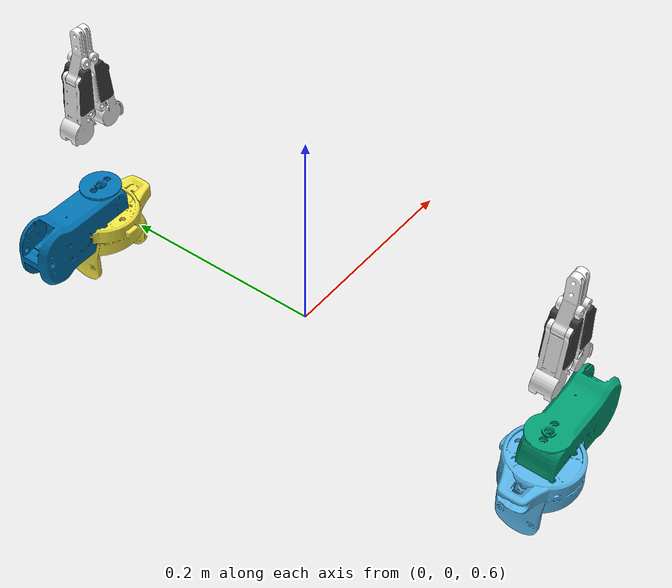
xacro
<?xml version="1.0"?>
<robot name="dual_rg2_arm_fixture" xmlns:xacro="http://www.ros.org/wiki/xacro">
  <xacro:arg name="use_standard_fingertips" default="false"/>
  <xacro:include filename="$(find onrobot_rg2)/urdf/onrobot_rg2_macro.xacro"/>

  <link name="arm_base"/>
  <link name="left_tool0"/>
  <joint name="left_wrist_joint" type="fixed">
    <parent link="arm_base"/><child link="left_tool0"/>
    <origin xyz="0 0.25 0.5" rpy="0 0 0"/>
  </joint>
  <link name="right_tool0"/>
  <joint name="right_wrist_joint" type="fixed">
    <parent link="arm_base"/><child link="right_tool0"/>
    <origin xyz="0 -0.25 0.5" rpy="0 0 0"/>
  </joint>

  <xacro:onrobot_rg2 parent="left_tool0" prefix="left_gripper_"
                       origin_xyz="0 0 0.08" origin_rpy="0 0 0"/>
  <xacro:onrobot_rg2 parent="right_tool0" prefix="right_gripper_"
                       origin_xyz="0 0 0.08" origin_rpy="0 0 3.14159265359"/>

  <link name="left_user_finger"/>
  <joint name="left_user_finger_joint" type="fixed">
    <parent link="left_gripper_left_finger_mount"/>
    <child link="left_user_finger"/>
  </joint>
  <link name="right_user_finger"/>
  <joint name="right_user_finger_joint" type="fixed">
    <parent link="right_gripper_right_finger_mount"/>
    <child link="right_user_finger"/>
  </joint>
</robot>

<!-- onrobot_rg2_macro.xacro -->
<robot xmlns:xacro="http://www.ros.org/wiki/xacro">

    <!-- ================= Xacro arguments ================= -->

      <xacro:arg name="mesh_path" default="package://onrobot_rg2/meshes"/>
      <xacro:arg name="fingertip_material" default="standard"/>
      <xacro:arg name="use_standard_fingertips" default="true"/>

      <!-- outwards or inwards -->
      <xacro:arg name="fingertip_orientation" default="inwards"/>

  <xacro:macro name="onrobot_rg2"
               params="parent:='' prefix:='' origin_xyz:='0 0 0' origin_rpy:='0 0 0'">
    <xacro:if value="${parent != ''}">
      <joint name="${prefix}mount_joint" type="fixed">
        <parent link="${parent}"/>
        <child link="${prefix}base_link"/>
        <origin xyz="${origin_xyz}" rpy="${origin_rpy}"/>
      </joint>
    </xacro:if>
      <!-- ================= Fingertip orientation ================= -->

      <xacro:if value="${'$(arg fingertip_orientation)' == 'inwards'}">
        <xacro:property name="fingertip_joint_rpy" value="${pi / 2} 0 0"/>
        <xacro:property name="fingertip_vis_xyz" value="0 0 0"/>
        <xacro:property name="fingertip_collision_z_offset" value="0"/>
      </xacro:if>

      <!-- Rotate the fingertips 180 degrees relative to inwards. -->
      <xacro:unless value="${'$(arg fingertip_orientation)' == 'inwards'}">
        <xacro:property name="fingertip_joint_rpy" value="${-pi / 2} 0 0"/>
        <xacro:property name="fingertip_vis_xyz" value="0 0 0.007"/>
        <xacro:property name="fingertip_collision_z_offset" value="0.007"/>
      </xacro:unless>

      <!-- ================= Fingertip material ================= -->

      <xacro:if value="${'$(arg fingertip_material)' == 'standard'}">
        <xacro:property
          name="fingertip_mesh"
          value="$(arg mesh_path)/fingertip_standard"/>
      </xacro:if>

      <xacro:if value="${'$(arg fingertip_material)' == 'x'}">
        <xacro:property
          name="fingertip_mesh"
          value="$(arg mesh_path)/fingertip_x"/>
      </xacro:if>

      <xacro:if value="${'$(arg fingertip_material)' == '50_standard'}">
        <xacro:property
          name="fingertip_mesh"
          value="$(arg mesh_path)/fingertip_50_standard"/>
      </xacro:if>

      <xacro:if value="${'$(arg fingertip_material)' == '50_x'}">
        <xacro:property
          name="fingertip_mesh"
          value="$(arg mesh_path)/fingertip_50_x"/>
      </xacro:if>

      <xacro:if value="${'$(arg fingertip_material)' == '100_standard'}">
        <xacro:property
          name="fingertip_mesh"
          value="$(arg mesh_path)/fingertip_100_standard"/>
      </xacro:if>

      <xacro:if value="${'$(arg fingertip_material)' == '100_x'}">
        <xacro:property
          name="fingertip_mesh"
          value="$(arg mesh_path)/fingertip_100_x"/>
      </xacro:if>

      <!-- ================= Fingertip collision values ================= -->

      <xacro:if value="${'$(arg fingertip_material)' == 'standard'}">
        <xacro:property name="fingertip_collision_1_x" value="0.0014"/>
        <xacro:property name="fingertip_collision_1_y" value="0.00"/>
        <xacro:property name="fingertip_collision_1_z" value="-0.00127"/>
        <xacro:property name="fingertip_collision_1_size" value="0.0298 0.0202 0.01145"/>
      </xacro:if>

      <xacro:if value="${'$(arg fingertip_material)' == 'x'}">
        <xacro:property name="fingertip_collision_1_x" value="0.0014"/>
        <xacro:property name="fingertip_collision_1_y" value="0.00"/>
        <xacro:property name="fingertip_collision_1_z" value="-0.001175"/>
        <xacro:property name="fingertip_collision_1_size" value="0.0298 0.0232 0.01155"/>
      </xacro:if>

      <xacro:if value="${'$(arg fingertip_material)' == '50_standard'}">
        <xacro:property name="fingertip_collision_1_x" value="0.0512"/>
        <xacro:property name="fingertip_collision_1_y" value="0.00"/>
        <xacro:property name="fingertip_collision_1_z" value="0.000725"/>
        <xacro:property name="fingertip_collision_1_size" value="0.0298 0.0202 0.01145"/>
        <xacro:property name="fingertip_collision_2_x" value="0.01195"/>
        <xacro:property name="fingertip_collision_2_y" value="0.00"/>
        <xacro:property name="fingertip_collision_2_z" value="-0.0025"/>
        <xacro:property name="fingertip_collision_2_size" value="0.0487 0.016 0.009"/>
      </xacro:if>

      <xacro:if value="${'$(arg fingertip_material)' == '50_x'}">
        <xacro:property name="fingertip_collision_1_x" value="0.0512"/>
        <xacro:property name="fingertip_collision_1_y" value="0.00"/>
        <xacro:property name="fingertip_collision_1_z" value="0.000825"/>
        <xacro:property name="fingertip_collision_1_size" value="0.0298 0.0232 0.01155"/>
        <xacro:property name="fingertip_collision_2_x" value="0.01195"/>
        <xacro:property name="fingertip_collision_2_y" value="0.00"/>
        <xacro:property name="fingertip_collision_2_z" value="-0.0025"/>
        <xacro:property name="fingertip_collision_2_size" value="0.0487 0.016 0.009"/>
      </xacro:if>

      <xacro:if value="${'$(arg fingertip_material)' == '100_standard'}">
        <xacro:property name="fingertip_collision_1_x" value="0.1012"/>
        <xacro:property name="fingertip_collision_1_y" value="0.00"/>
        <xacro:property name="fingertip_collision_1_z" value="0.000725"/>
        <xacro:property name="fingertip_collision_1_size" value="0.0298 0.0202 0.01145"/>
        <xacro:property name="fingertip_collision_2_x" value="0.036945"/>
        <xacro:property name="fingertip_collision_2_y" value="0.00"/>
        <xacro:property name="fingertip_collision_2_z" value="-0.0025"/>
        <xacro:property name="fingertip_collision_2_size" value="0.09869 0.016 0.009"/>
      </xacro:if>

      <xacro:if value="${'$(arg fingertip_material)' == '100_x'}">
        <xacro:property name="fingertip_collision_1_x" value="0.1012"/>
        <xacro:property name="fingertip_collision_1_y" value="0.00"/>
        <xacro:property name="fingertip_collision_1_z" value="0.000825"/>
        <xacro:property name="fingertip_collision_1_size" value="0.0298 0.0232 0.01155"/>
        <xacro:property name="fingertip_collision_2_x" value="0.036945"/>
        <xacro:property name="fingertip_collision_2_y" value="0.00"/>
        <xacro:property name="fingertip_collision_2_z" value="-0.0025"/>
        <xacro:property name="fingertip_collision_2_size" value="0.09869 0.016 0.009"/>
      </xacro:if>

      <!-- ================= Fingertip collision macro ================= -->

      <xacro:macro name="fingertip_collision">
        <collision>
          <origin
            xyz="${fingertip_collision_1_x} ${fingertip_collision_1_y} ${fingertip_collision_1_z + fingertip_collision_z_offset}"
            rpy="0 0 0"/>
          <geometry>
            <box size="${fingertip_collision_1_size}"/>
          </geometry>
          <material name="">
            <color rgba="0.0 0.0 1.0 0.25"/>
          </material>
        </collision>

        <xacro:if value="${'$(arg fingertip_material)' == '50_standard' or '$(arg fingertip_material)' == '50_x' or '$(arg fingertip_material)' == '100_standard' or '$(arg fingertip_material)' == '100_x'}">
          <collision>
            <origin
              xyz="${fingertip_collision_2_x} ${fingertip_collision_2_y} ${fingertip_collision_2_z + fingertip_collision_z_offset}"
              rpy="0 0 0"/>
            <geometry>
              <box size="${fingertip_collision_2_size}"/>
            </geometry>
            <material name="">
              <color rgba="0.0 0.0 1.0 0.25"/>
            </material>
          </collision>
        </xacro:if>
      </xacro:macro>

      <!-- ================= Fingertip inertial values ================= -->

      <!-- ================= Standard and x fingertip inertia ================= -->

      <xacro:if value="${'$(arg fingertip_material)' == 'standard' or '$(arg fingertip_material)' == 'x'}">
        <xacro:property
          name="fingertip_inertial_origin_xyz"
          value="0.000874448371820824 -2.28131673908659E-09 0.000216515486391504"/>
        <xacro:property name="fingertip_mass" value="0.004350525975552"/>
        <xacro:property name="fingertip_ixx" value="1.83172636303896E-07"/>
        <xacro:property name="fingertip_ixy" value="4.94040580376697E-14"/>
        <xacro:property name="fingertip_ixz" value="3.25324283899849E-09"/>
        <xacro:property name="fingertip_iyy" value="3.17534542484979E-07"/>
        <xacro:property name="fingertip_iyz" value="-1.30290439090972E-13"/>
        <xacro:property name="fingertip_izz" value="4.52560677067772E-07"/>
      </xacro:if>

      <!-- ================= 50 mm standard and x extension inertia ================= -->

      <xacro:if value="${'$(arg fingertip_material)' == '50_standard' or '$(arg fingertip_material)' == '50_x'}">
        <xacro:property
            name="fingertip_inertial_origin_xyz"
            value="0.029538 1.5497E-08 -0.00072798"/>
        <xacro:property name="fingertip_mass" value="0.018914"/>
        <xacro:property name="fingertip_ixx" value="5.1355E-07"/>
        <xacro:property name="fingertip_ixy" value="8.9434E-12"/>
        <xacro:property name="fingertip_ixz" value="-1.2966E-08"/>
        <xacro:property name="fingertip_iyy" value="6.4087E-06"/>
        <xacro:property name="fingertip_iyz" value="-1.2067E-12"/>
        <xacro:property name="fingertip_izz" value="6.7141E-06"/>
      </xacro:if>

      <!-- ================= 100 mm standard and x extension inertia ================= -->

      <xacro:if value="${'$(arg fingertip_material)' == '100_standard' or '$(arg fingertip_material)' == '100_x'}">
          <xacro:property
            name="fingertip_inertial_origin_xyz"
            value="0.055588 3.8168E-08 -0.0010111"/>
        <xacro:property name="fingertip_mass" value="0.029865"/>
        <xacro:property name="fingertip_ixx" value="6.8081E-07"/>
        <xacro:property name="fingertip_ixy" value="6.2987E-11"/>
        <xacro:property name="fingertip_ixz" value="-5.1688E-08"/>
        <xacro:property name="fingertip_iyy" value="3.0434E-05"/>
        <xacro:property name="fingertip_iyz" value="-4.1937E-12"/>
        <xacro:property name="fingertip_izz" value="3.0817E-05"/>
      </xacro:if>

      <!-- ================= Fingertip inertial macro ================= -->

      <xacro:macro name="fingertip_inertial">
        <inertial>
          <origin
            xyz="${fingertip_inertial_origin_xyz}"
            rpy="0 0 0"/>
          <mass value="${fingertip_mass}"/>
          <inertia
            ixx="${fingertip_ixx}"
            ixy="${fingertip_ixy}"
            ixz="${fingertip_ixz}"
            iyy="${fingertip_iyy}"
            iyz="${fingertip_iyz}"
            izz="${fingertip_izz}"/>
        </inertial>
      </xacro:macro>

      <!-- ================= Shared materials ================= -->

      <material name="${prefix}base_grey">
        <color
          rgba="0.752941176470588 0.752941176470588 0.752941176470588 1"/>
      </material>

      <material name="${prefix}body_white">
        <color rgba="1 1 1 1"/>
      </material>

      <material name="${prefix}cover_grey">
        <color
          rgba="0.25 0.25 0.25 1"/>
      </material>

      <!-- ================= Base link ================= -->

      <link name="${prefix}base_link">
        <inertial>
          <origin
            xyz="-0.00131198418656629 -0.000556731965880301 0.0176321259155524"
            rpy="0 0 0"/>

          <mass value="0.193451999968638"/>

          <inertia
            ixx="5.90803630433479E-05"
            ixy="-1.71397505073997E-08"
            ixz="3.54830418963831E-07"
            iyy="5.66555282982983E-05"
            iyz="-1.97668620237827E-07"
            izz="9.97553228051711E-05"/>
        </inertial>

        <visual>
          <origin
            xyz="0 0 0.01384"
            rpy="${pi} 0 ${pi}"/>
          <geometry>
            <mesh filename="$(arg mesh_path)/base_link.dae"/>
          </geometry>
        </visual>

        <collision>
          <origin
            xyz="0 0 0.032517"
            rpy="0 0 0"/>
          <geometry>
            <box size="0.075 0.071 0.070"/>
          </geometry>
          <material name="">
            <color rgba="0.0 0.0 1.0 0.25"/>
          </material>
        </collision>
      </link>

      <!-- ================= Body link ================= -->

      <link name="${prefix}body_link">
        <inertial>
          <origin
            xyz="0.0361404290088884 -4.28195287969727E-05 -5.16032341026391E-05"
            rpy="0 0 0"/>
          <mass value="0.463836579743255"/>
          <inertia
            ixx="0.000112619382113841"
            ixy="-2.64039125247071E-06"
            ixz="4.11872244580003E-07"
            iyy="0.000394091945870666"
            iyz="2.70518016902612E-08"
            izz="0.000318367398754903"/>
        </inertial>

        <visual>
          <origin
            xyz="-0.0335 0 0"
            rpy="0 -${pi/2} 0"/>
          <geometry>
            <mesh filename="$(arg mesh_path)/body_link.dae"/>
          </geometry>
        </visual>

        <collision>
          <origin xyz="0.039125 0 0" rpy="0 0 0"/>
          <geometry>
            <box size="0.1182 0.037 0.064"/>
          </geometry>
          <material name="">
            <color rgba="0.0 0.0 1.0 0.25"/>
          </material>
        </collision>
      </link>

      <joint name="${prefix}body_joint" type="revolute">
        <origin
          xyz="0 0 0.04734"
          rpy="0 -1.5707963267949 0"/>
        <parent link="${prefix}base_link"/>
        <child link="${prefix}body_link"/>
        <axis xyz="0 0 1"/>
        <limit
          lower="-1.5708"
          upper="1.5708"
          effort="0"
          velocity="0"/>
      </joint>

      <!-- ======================== Right SIDE =========================== -->

      <!-- ================= Right outer proximal finger ================= -->

      <link name="${prefix}right_outer_proximal_finger_link">
        <inertial>
          <origin
            xyz="0.0549431524395895 -0.00249999999999233 -0.000300000004998667"
            rpy="0 0 0"/>

          <mass value="0.000949825473476506"/>

          <inertia
            ixx="4.40551301449514E-09"
            ixy="-5.35328244924947E-24"
            ixz="2.43481133533544E-24"
            iyy="4.40551301449513E-09"
            iyz="5.10866980805369E-25"
            izz="6.16606121744734E-09"/>
        </inertial>

        <visual>
          <origin xyz="0 0 0" rpy="0 0 0"/>
          <geometry>
            <mesh
              filename="$(arg mesh_path)/right_outer_proximal_finger_link.STL"/>
          </geometry>
          <material name="${prefix}body_white"/>
        </visual>

        <collision>
          <origin xyz="0.0275 0.00 0" rpy="0 0 -0.06"/>
          <geometry>
            <box size="0.065 0.009 0.023"/>
          </geometry>
          <material name="">
            <color rgba="0.0 0.0 1.0 0.25"/>
          </material>
        </collision>
      </link>

      <joint name="${prefix}right_outer_proximal_finger_joint" type="revolute">
        <origin
          xyz="0.0759999999999999 0 -0.0170499999950017"
          rpy="-1.5707963267949 0 0"/>
        <parent link="${prefix}body_link"/>
        <child link="${prefix}right_outer_proximal_finger_link"/>
        <axis xyz="0 0 1"/>
        <limit
          lower="0"
          upper="1.22277767395"
          effort="2.9"
          velocity="1.753"/>
        <mimic
          joint="${prefix}finger_joint"
          multiplier="1"
          offset="0"/>
      </joint>

      <!-- ================= Right finger cover arm ================= -->

      <link name="${prefix}right_finger_cover_arm_link">
        <inertial>
          <origin
            xyz="0.00398155371535758 -0.00234551241087921 -0.000524978662517488"
            rpy="0 0 0"/>
          <mass value="0.0002753784901893"/>
          <inertia
            ixx="2.52764072470494E-09"
            ixy="1.30270225418703E-09"
            ixz="2.54692664978612E-14"
            iyy="4.02458813479656E-09"
            iyz="-1.18068992924501E-14"
            izz="3.79488588772191E-09"/>
        </inertial>

        <visual>
          <origin xyz="0 0 0" rpy="0 0 0"/>
          <geometry>
            <mesh
              filename="$(arg mesh_path)/right_finger_cover_arm_link.STL"/>
          </geometry>
          <material name="${prefix}cover_grey"/>
        </visual>
      </link>

      <joint name="${prefix}right_finger_cover_arm_joint" type="continuous">
        <origin
          xyz="0.0200247913038149 8.99497540546232E-05 0"
          rpy="0 0 0"/>
        <parent link="${prefix}right_outer_proximal_finger_link"/>
        <child link="${prefix}right_finger_cover_arm_link"/>
        <axis xyz="0 0 1"/>
        <mimic
          joint="${prefix}finger_joint"
          multiplier="-1"
          offset="0"/>
      </joint>

      <!-- ================= Right finger cover ================= -->

      <link name="${prefix}right_finger_cover_link">
        <inertial>
          <origin
            xyz="0.0160456222550394 -0.00117286244301727 -0.010813408882006"
            rpy="0 0 0"/>
          <mass value="0.00119298249046695"/>
          <inertia
            ixx="2.1995729016884E-08"
            ixy="1.5479102227688E-08"
            ixz="-1.63237337618954E-09"
            iyy="1.96363375879819E-07"
            iyz="-2.13914442228796E-11"
            izz="2.15524077561246E-07"/>
        </inertial>

        <visual>
          <origin xyz="0 0 0" rpy="0 0 0"/>
          <geometry>
            <mesh
              filename="$(arg mesh_path)/right_finger_cover_link.STL"/>
          </geometry>
          <material name="${prefix}cover_grey"/>
        </visual>
      </link>

      <joint name="${prefix}right_finger_cover_joint" type="continuous">
        <origin
          xyz="0.00825 -0.00475 0"
          rpy="0 0 0"/>

        <parent link="${prefix}right_finger_cover_arm_link"/>
        <child link="${prefix}right_finger_cover_link"/>
        <axis xyz="0 0 1"/>
        <mimic
          joint="${prefix}finger_joint"
          multiplier="1"
          offset="0"/>
      </joint>

      <!-- ================= Right finger base ================= -->

      <link name="${prefix}right_finger_base_link">
        <inertial>
          <origin
            xyz="0.0190391495388169 -0.00734945969008521 -0.000299994993758702"
            rpy="0 0 0"/>
          <mass value="0.0113435416196245"/>
          <inertia
            ixx="3.81411331619531E-07"
            ixy="5.77709795343554E-07"
            ixz="1.00938103147903E-13"
            iyy="2.42489387459591E-06"
            iyz="2.12234135747528E-13"
            izz="2.56166646481153E-06"/>
        </inertial>

        <visual>
          <origin xyz="0 0 0" rpy="0 0 0"/>
          <geometry>
            <mesh
              filename="$(arg mesh_path)/right_finger_base_link.STL"/>
          </geometry>
          <material name="${prefix}body_white"/>
        </visual>

        <collision>
          <origin xyz="0.010 -0.0057 0" rpy="0 0 -0.5"/>
          <geometry>
            <box size="0.020 0.009 0.023"/>
          </geometry>
          <material name="">
            <color rgba="0.0 0.0 1.0 0.25"/>
          </material>
        </collision>
      </link>

      <joint name="${prefix}right_finger_base_joint" type="continuous">
        <origin
          xyz="0.054943 -0.0025 0"
          rpy="0 0 0"/>
        <parent link="${prefix}right_outer_proximal_finger_link"/>
        <child link="${prefix}right_finger_base_link"/>
        <axis xyz="0 0 1"/>
        <mimic
          joint="${prefix}finger_joint"
          multiplier="-1"
          offset="0"/>
      </joint>

      <!-- ================= Right fingertip ================= -->

      <xacro:if value="$(arg use_standard_fingertips)">
      <link name="${prefix}right_finger_tip_link">
        <xacro:fingertip_inertial/>

        <visual>
          <origin
            xyz="${fingertip_vis_xyz}"
            rpy="0 0 0"/>
          <geometry>
            <mesh filename="${fingertip_mesh}_link.dae"/>
          </geometry>
        </visual>

        <xacro:fingertip_collision/>
      </link>
      </xacro:if>

      <link name="${prefix}right_finger_mount"/>

      <joint name="${prefix}right_finger_mount_joint" type="fixed">
        <origin
          xyz="0.0365 -0.0145 -0.0003"
          rpy="0 0 0"/>
        <parent link="${prefix}right_finger_base_link"/>
        <child link="${prefix}right_finger_mount"/>
      </joint>

      <xacro:if value="$(arg use_standard_fingertips)">
      <joint name="${prefix}right_finger_tip_joint" type="fixed">
        <origin xyz="0 0 0" rpy="${fingertip_joint_rpy}"/>
        <parent link="${prefix}right_finger_mount"/>
        <child link="${prefix}right_finger_tip_link"/>
      </joint>
      </xacro:if>

      <!-- ================= Right inner proximal finger ================= -->

      <link name="${prefix}right_inner_proximal_finger_link">
        <inertial>
          <origin
            xyz="0.0243420753391564 -0.00150984138331514 -1.19857137688403E-10"
            rpy="0 0 0"/>
          <mass value="0.0110525137434334"/>
          <inertia
            ixx="5.28599526468524E-07"
            ixy="1.92388035356887E-07"
            ixz="7.00847294261671E-14"
            iyy="4.58187718349272E-06"
            iyz="-1.57919476311131E-13"
            izz="4.16791084165572E-06"/>
        </inertial>

        <visual>
          <origin xyz="0 0 0" rpy="0 0 0"/>
          <geometry>
            <mesh
              filename="$(arg mesh_path)/right_inner_proximal_finger_link.STL"/>
          </geometry>
          <material name="${prefix}body_white"/>
        </visual>

        <collision>
          <origin xyz="0.0275 0.00 0" rpy="0 0 -0.06"/>
          <geometry>
            <box size="0.065 0.009 0.023"/>
          </geometry>
          <material name="">
            <color rgba="0.0 0.0 1.0 0.25"/>
          </material>
        </collision>
      </link>

      <joint name="${prefix}right_inner_proximal_finger_joint" type="continuous">
        <origin
          xyz="0.0925 0 -0.00754999999500211"
          rpy="-1.5707963267949 0 0"/>
        <parent link="${prefix}body_link"/>
        <child link="${prefix}right_inner_proximal_finger_link"/>
        <axis xyz="0 0 1"/>
        <mimic
          joint="${prefix}finger_joint"
          multiplier="1"
          offset="0"/>
      </joint>

      <!-- ======================== Left SIDE ========================== -->

      <!-- ================= Left outer proximal finger ================= -->

      <link name="${prefix}left_outer_proximal_finger_link">
        <inertial>
          <origin
            xyz="0.0549431524395903 -0.00249999999999203 0.000300000004998558"
            rpy="0 0 0"/>
          <mass value="0.000949825473476506"/>
          <inertia
            ixx="4.40551301449513E-09"
            ixy="2.09495677045624E-24"
            ixz="2.06150514093411E-24"
            iyy="4.40551301449514E-09"
            iyz="-7.79803711667657E-24"
            izz="6.16606121744734E-09"/>
        </inertial>

        <collision>
          <origin xyz="0.0275 0.00 0" rpy="0 0 -0.06"/>
          <geometry>
            <box size="0.065 0.009 0.023"/>
          </geometry>
          <material name="">
            <color rgba="0.0 0.0 1.0 0.25"/>
          </material>
        </collision>

        <visual>
          <origin xyz="0 0 0" rpy="0 0 0"/>
          <geometry>
            <mesh
              filename="$(arg mesh_path)/left_outer_proximal_finger_link.STL"/>
          </geometry>
          <material name="${prefix}body_white"/>
        </visual>
      </link>

      <joint name="${prefix}finger_joint" type="revolute">
        <origin
          xyz="0.076 0 0.01695"
          rpy="1.5708 0 0"/>
        <parent link="${prefix}body_link"/>
        <child link="${prefix}left_outer_proximal_finger_link"/>
        <axis xyz="0 0 1"/>
        <limit
          lower="0"
          upper="1.22277767395"
          effort="2.9"
          velocity="1.753"/>
      </joint>

      <!-- ================= Left finger cover arm ================= -->

      <link name="${prefix}left_finger_cover_arm_link">
        <inertial>
          <origin
            xyz="0.00402747500688258 -0.00226575451595132 7.49786625480784E-05"
            rpy="0 0 0"/>
          <mass value="0.000275378490192093"/>
          <inertia
            ixx="2.51597692156251E-09"
            ixy="1.29593094681286E-09"
            ixz="-2.29982206511419E-14"
            iyy="4.0362519379352E-09"
            iyz="1.60986576546714E-14"
            izz="3.79488588774442E-09"/>
        </inertial>

        <visual>
          <origin xyz="0 0 0" rpy="0 0 0"/>
          <geometry>
            <mesh
              filename="$(arg mesh_path)/left_finger_cover_arm_link.STL"/>
          </geometry>
          <material name="${prefix}cover_grey"/>
        </visual>
      </link>

      <joint name="${prefix}left_finger_cover_arm_joint" type="continuous">
        <origin
          xyz="0.0200247913038149 8.99497540546232E-05 0"
          rpy="0 0 0"/>
        <parent link="${prefix}left_outer_proximal_finger_link"/>
        <child link="${prefix}left_finger_cover_arm_link"/>
        <axis xyz="0 0 1"/>
        <mimic
          joint="${prefix}finger_joint"
          multiplier="-1"
          offset="0"/>
      </joint>

      <!-- ================= Left finger cover ================= -->

      <link name="${prefix}left_finger_cover_link">
        <inertial>
          <origin
            xyz="0.0160456742219451 -0.00117289097565787 0.000299987923847552"
            rpy="0 0 0"/>
          <mass value="0.00238596228059738"/>
          <inertia
            ixx="4.39898697731722E-08"
            ixy="3.09574885566677E-08"
            ixz="7.78954430157744E-14"
            iyy="3.9272551878155E-07"
            iyz="-5.00980257567142E-14"
            izz="4.310453229369E-07"/>
        </inertial>

        <visual>
          <origin xyz="0 0 0" rpy="0 0 0"/>
          <geometry>
            <mesh
              filename="$(arg mesh_path)/left_finger_cover_link.STL"/>
          </geometry>
          <material name="${prefix}cover_grey"/>
        </visual>
      </link>

      <joint name="${prefix}left_finger_cover_joint" type="continuous">
        <origin
          xyz="0.0082499964519562 -0.0047500061623866 0"
          rpy="0 0 0"/>
        <parent link="${prefix}left_finger_cover_arm_link"/>
        <child link="${prefix}left_finger_cover_link"/>
        <axis xyz="0 0 1"/>
        <mimic
          joint="${prefix}finger_joint"
          multiplier="1"
          offset="0"/>
      </joint>

      <!-- ================= Left finger base ================= -->

      <link name="${prefix}left_finger_base_link">
        <inertial>
          <origin
            xyz="0.0190391495388182 -0.00734945969008528 0.000300005016238398"
            rpy="0 0 0"/>
          <mass value="0.0113435416196245"/>
          <inertia
            ixx="3.81411331619534E-07"
            ixy="5.77709795343554E-07"
            ixz="1.00938103147903E-13"
            iyy="2.42489387459591E-06"
            iyz="2.12234135605753E-13"
            izz="2.56166646481153E-06"/>
        </inertial>

        <visual>
          <origin xyz="0 0 0" rpy="0 0 0"/>
          <geometry>
            <mesh
              filename="$(arg mesh_path)/left_finger_base_link.STL"/>
          </geometry>
          <material name="${prefix}body_white"/>
        </visual>

        <collision>
          <origin xyz="0.010 -0.0057 0" rpy="0 0 -0.5"/>
          <geometry>
            <box size="0.020 0.009 0.023"/>
          </geometry>
          <material name="">
            <color rgba="0.0 0.0 1.0 0.25"/>
          </material>
        </collision>
      </link>

      <joint name="${prefix}left_finger_base_joint" type="continuous">
        <origin
          xyz="0.0549431524395901 -0.00249999999999208 0"
          rpy="0 0 0"/>
        <parent link="${prefix}left_outer_proximal_finger_link"/>
        <child link="${prefix}left_finger_base_link"/>
        <axis xyz="0 0 1"/>
        <mimic
          joint="${prefix}finger_joint"
          multiplier="-1"
          offset="0"/>
      </joint>

      <!-- ================= Left fingertip ================= -->

      <xacro:if value="$(arg use_standard_fingertips)">
      <link name="${prefix}left_finger_tip_link">
        <xacro:fingertip_inertial/>
        <visual>
          <origin
            xyz="${fingertip_vis_xyz}"
            rpy="0 0 0"/>
          <geometry>
            <mesh filename="${fingertip_mesh}_link.dae"/>
          </geometry>
        </visual>

        <xacro:fingertip_collision/>
      </link>
      </xacro:if>

      <link name="${prefix}left_finger_mount"/>

      <joint name="${prefix}left_finger_mount_joint" type="fixed">
        <origin
          xyz="0.0365000000000001 -0.0144999999999998 0.0003000000049987"
          rpy="0 0 0"/>
        <parent link="${prefix}left_finger_base_link"/>
        <child link="${prefix}left_finger_mount"/>
      </joint>

      <xacro:if value="$(arg use_standard_fingertips)">
      <joint name="${prefix}left_finger_tip_joint" type="fixed">
        <origin xyz="0 0 0" rpy="${fingertip_joint_rpy}"/>
        <parent link="${prefix}left_finger_mount"/>
        <child link="${prefix}left_finger_tip_link"/>
      </joint>
      </xacro:if>

      <!-- ================= Left inner proximal finger ================= -->

      <link name="${prefix}left_inner_proximal_finger_link">
        <inertial>
          <origin
            xyz="0.0243420753391578 -0.00150984138335663 -1.14846121206326E-10"
            rpy="0 0 0"/>
          <mass value="0.0110525137434334"/>
          <inertia
            ixx="5.28599526468673E-07"
            ixy="1.92388035358472E-07"
            ixz="7.0084725912438E-14"
            iyy="4.58187718349257E-06"
            iyz="-1.5791947291098E-13"
            izz="4.16791084165572E-06"/>
        </inertial>

        <visual>
          <origin xyz="0 0 0" rpy="0 0 0"/>
          <geometry>
            <mesh
              filename="$(arg mesh_path)/left_inner_proximal_finger_link.STL"/>
          </geometry>
          <material name="${prefix}body_white"/>
        </visual>

        <collision>
          <origin xyz="0.0275 0.00 0" rpy="0 0 -0.06"/>
          <geometry>
            <box size="0.065 0.009 0.023"/>
          </geometry>
          <material name="">
            <color rgba="0.0 0.0 1.0 0.25"/>
          </material>
        </collision>
      </link>

      <joint name="${prefix}left_inner_proximal_finger_joint" type="continuous">
        <origin
          xyz="0.0925000000000006 0 0.0074500000049881"
          rpy="1.57079632679489 0 0"/>

        <parent link="${prefix}body_link"/>
        <child link="${prefix}left_inner_proximal_finger_link"/>
        <axis xyz="0 0 1"/>
        <mimic
          joint="${prefix}finger_joint"
          multiplier="1"
          offset="0"/>
      </joint>

      <!-- ================= Fingertip friction ================= -->

      <gazebo reference="${prefix}left_finger_tip_link">
        <mu1>0.4</mu1>
        <mu2>0.4</mu2>
      </gazebo>

      <gazebo reference="${prefix}right_finger_tip_link">
        <mu1>0.4</mu1>
        <mu2>0.4</mu2>
      </gazebo>
  </xacro:macro>
</robot>
